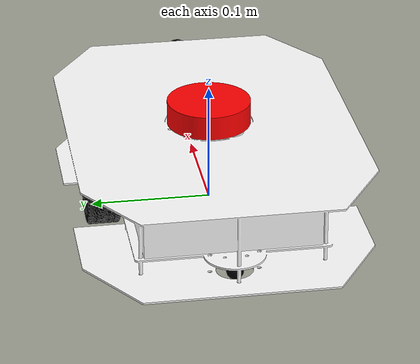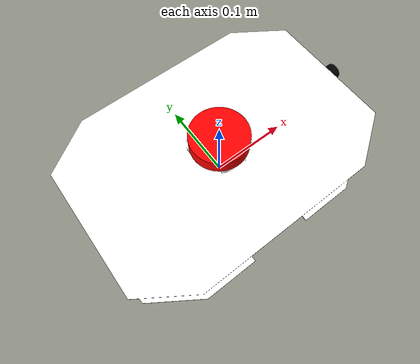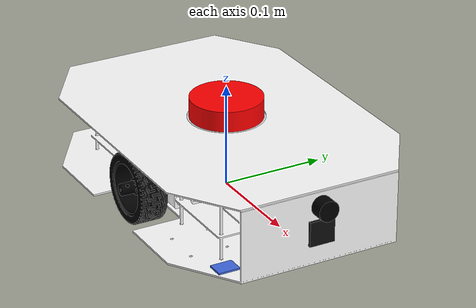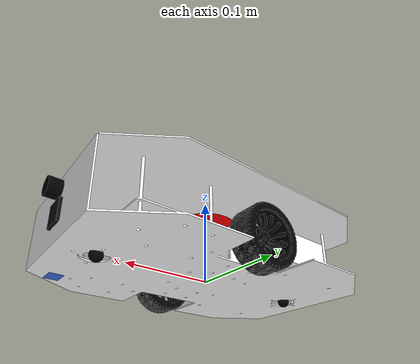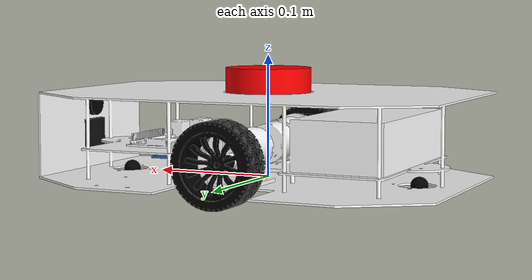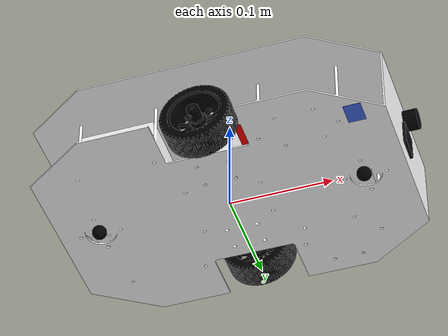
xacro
<?xml version="1.0"?>

<robot name="benzene" xmlns:xacro="http://www.ros.org/wiki/xacro">

  <xacro:arg name="robot_name" default="benzene"/>
  <xacro:arg name="prefix" default=""/>
  <xacro:arg name="use_gazebo" default="false"/>

  <xacro:property name="base_length" value="0.340"/>
  <xacro:property name="base_width"  value="0.240"/>
  <xacro:property name="base_height" value="0.08"/>
  <xacro:property name="base_mass"   value="5.0"/>

  <xacro:property name="wheel_radius" value="0.035"/>
  <xacro:property name="wheel_width"  value="0.020"/>
  <xacro:property name="wheel_mass"   value="0.20"/>

  <xacro:property name="caster_radius" value="0.015"/>
  <xacro:property name="caster_mass"   value="0.05"/>

  <xacro:include filename="$(find benzene_description)/urdf/sensors/lidar.xacro"/>
  <xacro:include filename="$(find benzene_description)/urdf/sensors/simple_camera.xacro"/>
  <xacro:include filename="$(find benzene_description)/urdf/sensors/imu.xacro"/>
  <xacro:include filename="$(find benzene_description)/urdf/sensors/ultrasonic_sensor.xacro"/>

  <xacro:include filename="$(find benzene_description)/urdf/mech/caster.xacro"/>
  <xacro:include filename="$(find benzene_description)/urdf/mech/wheel.xacro"/>
  <xacro:include filename="$(find benzene_description)/urdf/mech/base.xacro"/>

  <xacro:base
    prefix="$(arg prefix)"
    base_name="base"
    parent="base_footprint"
    xyz_offset="0 0 0"
    rpy_offset="0 0 0"
    base_length="${base_length}"
    base_width="${base_width}"
    base_height="${base_height}"
    base_mass="${base_mass}"/>

  <xacro:lidar_sensor
    prefix="$(arg prefix)"
    parent="base_link"
    frame_id="laser_frame"
    xyz_offset="0 0 0.08"
    rpy_offset="0 0 0"
    mesh_xyz_offset="0 0 -0.01"
    mesh_rpy_offset="0 0 0"
    topic_name="scan"/>

  <xacro:imu_sensor
    prefix="$(arg prefix)"
    parent="base_link"
    frame_id="imu"
    xyz_offset="0.143 -0.08 0"
    rpy_offset="0 0 0"
    update_rate="15.0"
    topic_name="imu/data"/>

  <xacro:simple_camera
    camera_name="cam_1"
    parent="base_link"
    xyz_offset="0.17 0 0.03"
    rpy_offset="0 0 0"
    image_width="640"
    image_height="480"
    horizontal_fov="1.089"
    update_rate="30"
    topic="cam_1/image_raw"
    camera_info_topic="cam_1/camera_info"/>

  <xacro:caster_wheel
    prefix="$(arg prefix)"
    caster_name="front_caster_wheel"
    parent="base_link"
    xyz_offset="0.13 0 0"
    rpy_offset="0 0 0"
    caster_radius="${caster_radius}"
    caster_mass="${caster_mass}"/>

  <xacro:caster_wheel
    prefix="$(arg prefix)"
    caster_name="back_caster_wheel"
    parent="base_link"
    xyz_offset="-0.13 0 0"
    rpy_offset="0 0 0"
    caster_radius="${caster_radius}"
    caster_mass="${caster_mass}"/>

  <xacro:wheel
    prefix="$(arg prefix)"
    wheel_name="left_wheel"
    parent="base_link"
    xyz_offset="0 0.0925 0.020"
    rpy_offset="0 0 0"
    axis="0 1 0"
    wheel_radius="${wheel_radius}"
    wheel_width="${wheel_width}"
    wheel_mass="${wheel_mass}"/>

  <xacro:wheel
    prefix="$(arg prefix)"
    wheel_name="right_wheel"
    parent="base_link"
    xyz_offset="0 -0.0925 0.020"
    rpy_offset="0 0 0"
    axis="0 1 0"
    wheel_radius="${wheel_radius}"
    wheel_width="${wheel_width}"
    wheel_mass="${wheel_mass}"/>

  <xacro:ultrasonic_sensor
    prefix="$(arg prefix)"
    sensor_name="ultrasonic"
    parent="base_link"
    xyz_offset="0.175 0 0.055"
    rpy_offset="0 0 0"
    topic_name="ultrasonic/scan"/>

  <xacro:include filename="$(find benzene_description)/urdf/control/gazebo_sim_ros2_control.urdf.xacro"/>
  <xacro:load_gazebo_sim_ros2_control_plugin robot_name="$(arg robot_name)" use_gazebo="$(arg use_gazebo)"/>
  <xacro:include filename="$(find benzene_description)/urdf/control/velocity_control_plugin.urdf.xacro"/>
  <xacro:load_velocity_control_plugin use_gazebo="$(arg use_gazebo)"/>
  <xacro:include filename="$(find benzene_description)/urdf/control/benzene_control.urdf.xacro"/>
  <xacro:benzene_ros2_control prefix="$(arg prefix)" use_gazebo="$(arg use_gazebo)"/>

</robot>

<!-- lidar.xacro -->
<robot xmlns:xacro="http://www.ros.org/wiki/xacro">
  <xacro:property
    name="M_PI"
    value="3.1415926535897931"/>
  <xacro:macro
    name="lidar_sensor"
    params="
      prefix:=''
      parent:='base_link'
      frame_id:='laser_frame'
      mesh_file:='file://$(find benzene_description)/meshes/rplidar/lidar.stl'
      xyz_offset:='0 0 0'
      rpy_offset:='0 0 0'
      mesh_xyz_offset:='0 0 0'
      mesh_rpy_offset:='0 0 0'
      mesh_scale:='0.001 0.001 0.001'
      collision_xyz_offset:='0 0 0'
      collision_rpy_offset:='0 0 0'
      inertial_xyz_offset:='0 0 0'
      inertial_rpy_offset:='0 0 0'
      lidar_width:=0.077
      lidar_height:=0.0398
      mass:=0.185
      material_name:='lidar_red'
      material_color:='1 0 0 1'
      gazebo_material_ambient:='0.1 0.1 0.1 1'
      gazebo_material_diffuse:='0.1 0.1 0.1 1'
      gazebo_material_specular:='0.1 0.1 0.1 1'
      update_rate:=10
      ray_count:=360
      min_angle:='-3.14'
      max_angle:='3.14'
      min_range:='0.3'
      max_range:='12.0'
      range_resolution:='0.013'
      topic_name:='scan'
      always_on:=true
      visualize:=false
      enable_collision:=true
    ">

    <xacro:property
      name="radius"
      value="${lidar_width / 2}"/>
    <xacro:property
      name="ixx_iyy"
      value="${(mass / 12) * (3 * radius * radius + lidar_height * lidar_height)}"/>
    <xacro:property
      name="izz"
      value="${(mass / 2) * (radius * radius)}"/>
    <link name="${prefix}${frame_id}">
      <visual>
        <origin xyz="${mesh_xyz_offset}" rpy="${mesh_rpy_offset}"/>
        <geometry>
          <mesh filename="${mesh_file}" scale="${mesh_scale}"/>
        </geometry>
        <material name="${material_name}">
          <color rgba="${material_color}"/>
        </material>
      </visual>

      <xacro:if value="${enable_collision}">
        <collision>
          <origin xyz="${collision_xyz_offset}" rpy="${collision_rpy_offset}"/>
          <geometry>
            <mesh filename="${mesh_file}" scale="${mesh_scale}"/>
          </geometry>
        </collision>
      </xacro:if>
      <inertial>
        <mass value="${mass}"/>
        <origin xyz="${inertial_xyz_offset}" rpy="${inertial_rpy_offset}"/>
        <inertia
          ixx="${ixx_iyy}"
          ixy="0.0"
          ixz="0.0"
          iyy="${ixx_iyy}"
          iyz="0.0"
          izz="${izz}"/>
      </inertial>
    </link>

    <joint name="${prefix}${frame_id}_joint" type="fixed">
      <parent link="${prefix}${parent}"/>
      <child link="${prefix}${frame_id}"/>
      <origin xyz="${xyz_offset}" rpy="${rpy_offset}"/>
    </joint>
    <gazebo reference="${prefix}${frame_id}">
      <material>
        <ambient>${gazebo_material_ambient}</ambient>
        <diffuse>${gazebo_material_diffuse}</diffuse>
        <specular>${gazebo_material_specular}</specular>
      </material>
      <sensor name="${prefix}lidar_sensor" type="gpu_lidar">
        <topic>${topic_name}</topic>
        <update_rate>${update_rate}</update_rate>
        <always_on>${always_on}</always_on>
        <visualize>${visualize}</visualize>
        <ray>
          <scan>
            <horizontal>
              <samples>${ray_count}</samples>
              <resolution>1</resolution>
              <min_angle>${min_angle}</min_angle>
              <max_angle>${max_angle}</max_angle>
            </horizontal>
            <vertical>
              <samples>1</samples>
              <resolution>1</resolution>
              <min_angle>0</min_angle>
              <max_angle>0</max_angle>
            </vertical>
          </scan>
          <range>
            <min>${min_range}</min>
            <max>${max_range}</max>
            <resolution>${range_resolution}</resolution>
          </range>
        </ray>
        <gz_frame_id>
          ${prefix}${frame_id}
        </gz_frame_id>
      </sensor>
    </gazebo>

  </xacro:macro>

</robot>

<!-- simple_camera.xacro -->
<robot xmlns:xacro="http://www.ros.org/wiki/xacro">

  <xacro:property name="M_PI" value="3.1415926535897931"/>

  <xacro:macro name="simple_camera" params="
    prefix:=''
    camera_name:='camera'
    parent:='base_link'
    xyz_offset:='0 0 0'
    rpy_offset:='0 0 0'
    cam_width:=0.025
    cam_height:=0.024
    cam_depth:=0.009
    material_name:='black'
    material_color:='0.05 0.05 0.05 1'
    horizontal_fov:=1.089
    image_width:=640
    image_height:=480
    clip_near:=0.05
    clip_far:=8.0
    update_rate:=30
    always_on:=true
    visualize:=true
    topic:='camera/image_raw'
    camera_info_topic:='camera/camera_info'
  ">

    <link name="${prefix}${camera_name}_link">
      <visual>
        <origin xyz="0 0 0" rpy="0 0 0"/>
        <geometry>
          <box size="${cam_depth} ${cam_width} ${cam_height}"/>
        </geometry>
        <material name="${material_name}">
          <color rgba="${material_color}"/>
        </material>
      </visual>
    </link>

    <joint name="${prefix}${camera_name}_joint" type="fixed">
      <parent link="${prefix}${parent}"/>
      <child link="${prefix}${camera_name}_link"/>
      <origin xyz="${xyz_offset}" rpy="${rpy_offset}"/>
    </joint>

    <link name="${prefix}${camera_name}_optical"/>

    <joint name="${prefix}${camera_name}_optical_joint" type="fixed">
      <parent link="${prefix}${camera_name}_link"/>
      <child link="${prefix}${camera_name}_optical"/>
      <origin xyz="0 0 0" rpy="${-M_PI/2} 0 ${-M_PI/2}"/>
    </joint>

    <gazebo reference="${prefix}${camera_name}_link">
      <material>Gazebo/Black</material>
      <sensor name="${prefix}${camera_name}" type="camera">
        <pose>0 0 0 0 0 0</pose>
        <always_on>${always_on}</always_on>
        <visualize>${visualize}</visualize>
        <update_rate>${update_rate}</update_rate>
        <camera>
          <horizontal_fov>${horizontal_fov}</horizontal_fov>
          <image>
            <format>R8G8B8</format>
            <width>${image_width}</width>
            <height>${image_height}</height>
          </image>
          <clip>
            <near>${clip_near}</near>
            <far>${clip_far}</far>
          </clip>
        </camera>
        <topic>${topic}</topic>
        <gz_frame_id>
          ${prefix}${camera_name}_optical
        </gz_frame_id>
      </sensor>
    </gazebo>
  </xacro:macro>

</robot>

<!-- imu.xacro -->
<robot xmlns:xacro="http://www.ros.org/wiki/xacro">
    <xacro:property name="M_PI" value="3.1415926535897931" />

    <xacro:macro name="imu_sensor" params="
        prefix:=''
        parent:='base_link'
        frame_id:='imu'
        xyz_offset:='0 0 0'
        rpy_offset:='0 0 0'
        inertial_xyz_offset:='0 0 0'
        inertial_rpy_offset:='0 0 0'
        mass:=0.031
        length:=0.0164
        width:=0.0212
        height:=0.0033
        material_name:='imu_blue'
        material_color:='0.25 0.41 0.88 1'
        gazebo_material_ambient:='0.1 0.1 0.1 1'
        gazebo_material_diffuse:='0.1 0.1 0.1 1'
        gazebo_material_specular:='0.1 0.1 0.1 1'
        update_rate:='15.0'
        topic_name:='imu/data'
        always_on:=true
        visualize:=false">

        <xacro:property name="ixx" value="${(mass/12.0) * (height*height + width*width)}" />
        <xacro:property name="iyy" value="${(mass/12.0) * (length*length + height*height)}" />
        <xacro:property name="izz" value="${(mass/12.0) * (length*length + width*width)}" />

        <link name="${prefix}${frame_id}_link">
            <visual>
                <origin xyz="0 0 0" rpy="0 0 0"/>
                <geometry>
                    <box size="${length} ${width} ${height}"/>
                </geometry>
                <material name="${material_name}">
                    <color rgba="${material_color}"/>
                </material>
            </visual>

            <inertial>
                <mass value="${mass}" />
                <origin xyz="${inertial_xyz_offset}" rpy="${inertial_rpy_offset}"/>
                <inertia
                    ixx="${ixx}"
                    ixy="0.0"
                    ixz="0.0"
                    iyy="${iyy}"
                    iyz="0.0"
                    izz="${izz}" />
            </inertial>
        </link>

        <joint name="${prefix}${frame_id}_joint" type="fixed">
            <parent link="${prefix}${parent}"/>
            <child link="${prefix}${frame_id}_link" />
            <origin xyz="${xyz_offset}" rpy="${rpy_offset}"/>
        </joint>

        <gazebo reference="${prefix}${frame_id}_link">
            <material>
                <ambient>${gazebo_material_ambient}</ambient>
                <diffuse>${gazebo_material_diffuse}</diffuse>
                <specular>${gazebo_material_specular}</specular>
            </material>
            <sensor name="${prefix}imu_sensor" type="imu">
                <topic>${topic_name}</topic>
                <update_rate>${update_rate}</update_rate>
                <always_on>${always_on}</always_on>
                <visualize>${visualize}</visualize>
                <gz_frame_id>${prefix}${frame_id}_link</gz_frame_id>
            </sensor>
        </gazebo>
    </xacro:macro>
</robot>

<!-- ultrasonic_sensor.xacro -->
<robot xmlns:xacro="http://www.ros.org/wiki/xacro">

<xacro:macro name="ultrasonic_sensor" params="
    prefix:=''
    sensor_name:='ultrasonic'
    parent:='base_link'
    xyz_offset:='0 0 0'
    rpy_offset:='0 0 0'
    sensor_radius:=0.01
    sensor_length:=0.02
    material_name:='black'
    material_color:='0 0 0 1'
    topic_name:='ultrasonic/scan'
    update_rate:=10
    min_range:=0.02
    max_range:=1.0
  ">

  <link name="${prefix}${sensor_name}">
    <visual>
      <origin xyz="0 0 0" rpy="0 ${pi/2} 0"/>
      <geometry>
        <cylinder radius="${sensor_radius}" length="${sensor_length}"/>
      </geometry>
      <material name="${material_name}">
        <color rgba="${material_color}"/>
      </material>
    </visual>
  </link>

  <joint name="${prefix}${sensor_name}_joint" type="fixed">
    <parent link="${prefix}${parent}"/>
    <child link="${prefix}${sensor_name}"/>
    <origin xyz="${xyz_offset}" rpy="${rpy_offset}"/>
  </joint>

  <gazebo reference="${prefix}${sensor_name}">
    <sensor name="${prefix}${sensor_name}" type="gpu_lidar">
      <always_on>true</always_on>
      <visualize>true</visualize>
      <update_rate>${update_rate}</update_rate>
      <topic>${topic_name}</topic>
      <gz_frame_id>${prefix}${sensor_name}</gz_frame_id>
      <lidar>
        <scan>
          <horizontal>
            <samples>5</samples>
            <resolution>1</resolution>
            <min_angle>-0.13</min_angle>
            <max_angle>0.13</max_angle>
          </horizontal>
        </scan>
        <range>
          <min>${min_range}</min>
          <max>${max_range}</max>
          <resolution>0.01</resolution>
        </range>
        <noise>
          <type>gaussian</type>
          <mean>0.0</mean>
          <stddev>0.01</stddev>
        </noise>
      </lidar>
    </sensor>
  </gazebo>

</xacro:macro>
</robot>

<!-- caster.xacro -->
<robot xmlns:xacro="http://www.ros.org/wiki/xacro">

  <xacro:macro name="caster_wheel" params="
    prefix:=''
    caster_name:='front_caster_wheel'
    parent:='base_link'
    xyz_offset:='0 0 0'
    rpy_offset:='0 0 0'
    mesh_file:='package://benzene_description/meshes/v3/visual/caster_link.stl'
    mesh_scale:='0.001 0.001 0.001'
    mesh_xyz_offset:='0 0 0'
    mesh_rpy_offset:='0 0 0'
    caster_radius:=0.025
    caster_mass:=0.1
    material_name:='black'
    material_color:='0 0 0 1'
    mu1:=0.0001
    mu2:=0.0001
  ">

    <link name="${prefix}${caster_name}">
      <visual>
        <origin xyz="${mesh_xyz_offset}" rpy="${mesh_rpy_offset}"/>
        <geometry>
          <mesh filename="${mesh_file}" scale="${mesh_scale}"/>
        </geometry>
        <material name="${material_name}">
          <color rgba="${material_color}"/>
        </material>
      </visual>
      <collision>
        <origin xyz="0 0 0" rpy="0 0 0"/>
        <geometry>
          <sphere radius="${caster_radius}"/>
        </geometry>
      </collision>
      <inertial>
        <origin xyz="0 0 0" rpy="0 0 0"/>
        <mass value="${caster_mass}"/>
        <inertia
          ixx="${(2.0/5.0) * caster_mass * caster_radius * caster_radius}"
          ixy="0.0"
          ixz="0.0"
          iyy="${(2.0/5.0) * caster_mass * caster_radius * caster_radius}"
          iyz="0.0"
          izz="${(2.0/5.0) * caster_mass * caster_radius * caster_radius}"/>
      </inertial>
    </link>
    <joint name="${prefix}${caster_name}_joint" type="fixed">
      <parent link="${prefix}${parent}"/>
      <child link="${prefix}${caster_name}"/>
      <origin xyz="${xyz_offset}" rpy="${rpy_offset}"/>
    </joint>

    <gazebo reference="${prefix}${caster_name}">
      <material>
        <ambient>0 0 0 1</ambient>
        <diffuse>0 0 0 1</diffuse>
        <specular>0 0 0 1</specular>
      </material>
      <mu1>${mu1}</mu1>
      <mu2>${mu2}</mu2>
    </gazebo>

  </xacro:macro>

</robot>

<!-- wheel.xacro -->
<robot xmlns:xacro="http://www.ros.org/wiki/xacro">

  <xacro:macro name="wheel" params="
    prefix:=''
    wheel_name:='left_wheel'
    parent:='base_link'
    xyz_offset:='0 0.0925 0.020'
    rpy_offset:='0 0 0'
    axis:='0 1 0'
    mesh_file:='package://benzene_description/meshes/v3/visual/wheel_link.stl'
    mesh_scale:='0.001 0.001 0.001'
    mesh_xyz_offset:='0 0 0'
    mesh_rpy_offset:='0 0 ${pi/2}'
    wheel_radius:=0.035
    wheel_width:=0.03
    wheel_mass:=0.5
    material_name:='black'
    material_color:='0 0 0 1'
    damping:=0.05
    friction:=0.05
  ">

    <joint name="${prefix}${wheel_name}_joint" type="continuous">
      <parent link="${prefix}${parent}"/>
      <child link="${prefix}${wheel_name}_link"/>
      <origin xyz="${xyz_offset}" rpy="${rpy_offset}"/>
      <axis xyz="${axis}"/>
      <dynamics damping="${damping}" friction="${friction}"/>
    </joint>

    <link name="${prefix}${wheel_name}_link">
      <visual>
        <origin xyz="${mesh_xyz_offset}" rpy="${mesh_rpy_offset}"/>
        <geometry>
          <mesh filename="${mesh_file}" scale="${mesh_scale}"/>
        </geometry>
        <material name="${material_name}">
          <color rgba="${material_color}"/>
        </material>
      </visual>
      <collision>
        <origin xyz="0 0 0" rpy="-${pi/2} 0 0"/>
        <geometry>
          <cylinder radius="${wheel_radius}" length="${wheel_width}"/>
        </geometry>
      </collision>
      <inertial>
        <origin xyz="0 0 0" rpy="0 0 0"/>
        <mass value="${wheel_mass}"/>
        <inertia
          ixx="${(1.0/12.0) * wheel_mass * (3*wheel_radius*wheel_radius + wheel_width*wheel_width)}"
          ixy="0.0"
          ixz="0.0"
          iyy="${(1.0/12.0) * wheel_mass * (3*wheel_radius*wheel_radius + wheel_width*wheel_width)}"
          iyz="0.0"
          izz="${0.5 * wheel_mass * wheel_radius*wheel_radius}"/>
      </inertial>
    </link>

    <gazebo reference="${prefix}${wheel_name}_link">
      <material>Gazebo/Black</material>
    </gazebo>

  </xacro:macro>

</robot>

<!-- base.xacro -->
<robot xmlns:xacro="http://www.ros.org/wiki/xacro">

  <xacro:macro name="base" params="
    prefix:=''
    base_name:='base'
    parent:='base_footprint'
    xyz_offset:='0 0 0'
    rpy_offset:='0 0 0'
    mesh_file:='package://benzene_description/meshes/v3/visual/base_link.stl'
    mesh_scale:='0.001 0.001 0.001'
    mesh_xyz_offset:='0 0 0'
    mesh_rpy_offset:='1.5708 0 ${pi/2}'
    base_length:=0.3
    base_width:=0.2
    base_height:=0.08
    base_mass:=5.0
    collision_xyz_offset:='0 0 0.04'
    collision_rpy_offset:='0 0 0'
    material_name:='white'
    material_color:='1 1 1 1'
  ">

    <link name="${prefix}${parent}"/>
    <joint name="${prefix}${base_name}_footprint_joint" type="fixed">
      <parent link="${prefix}${parent}"/>
      <child link="${prefix}${base_name}_link"/>
      <origin xyz="${xyz_offset}" rpy="${rpy_offset}"/>
    </joint>

    <link name="${prefix}${base_name}_link">
      <visual>
        <origin xyz="${mesh_xyz_offset}" rpy="${mesh_rpy_offset}"/>
        <geometry>
          <mesh filename="${mesh_file}" scale="${mesh_scale}"/>
        </geometry>
        <material name="${material_name}">
          <color rgba="${material_color}"/>
        </material>
      </visual>
      <collision>
        <origin xyz="${collision_xyz_offset}" rpy="${collision_rpy_offset}"/>
        <geometry>
          <box size="${base_length} ${base_width} ${base_height}"/>
        </geometry>
      </collision>
      <inertial>
        <origin xyz="0 0 0" rpy="0 0 0"/>
        <mass value="${base_mass}"/>
        <inertia
          ixx="${(1.0/12.0) * base_mass * (base_width*base_width + base_height*base_height)}"
          ixy="0.0"
          ixz="0.0"
          iyy="${(1.0/12.0) * base_mass * (base_length*base_length + base_height*base_height)}"
          iyz="0.0"
          izz="${(1.0/12.0) * base_mass * (base_length*base_length + base_width*base_width)}"/>
      </inertial>
    </link>

  </xacro:macro>

</robot>
